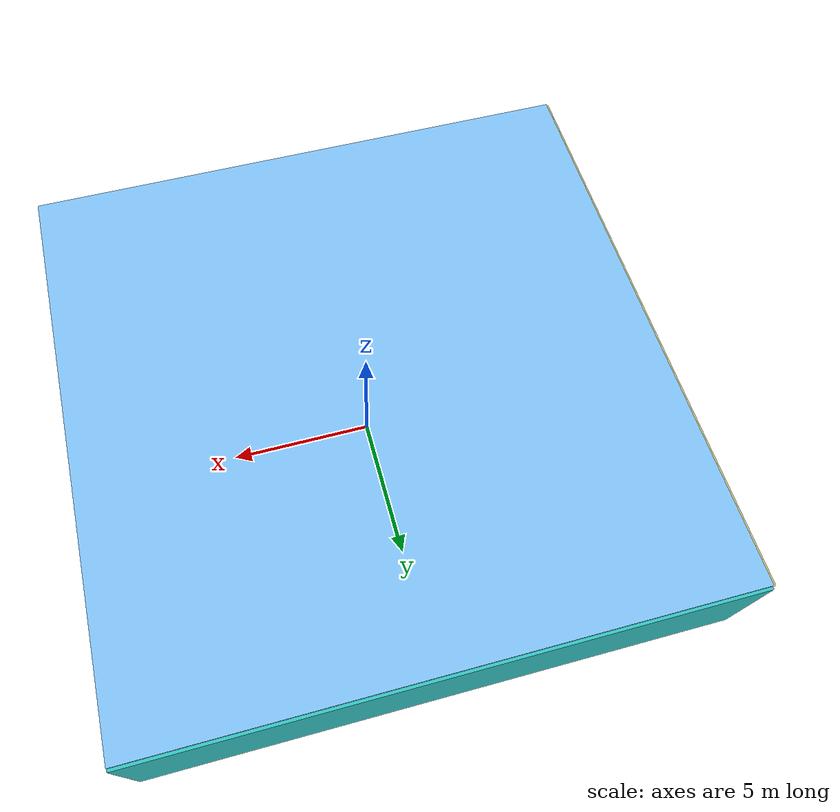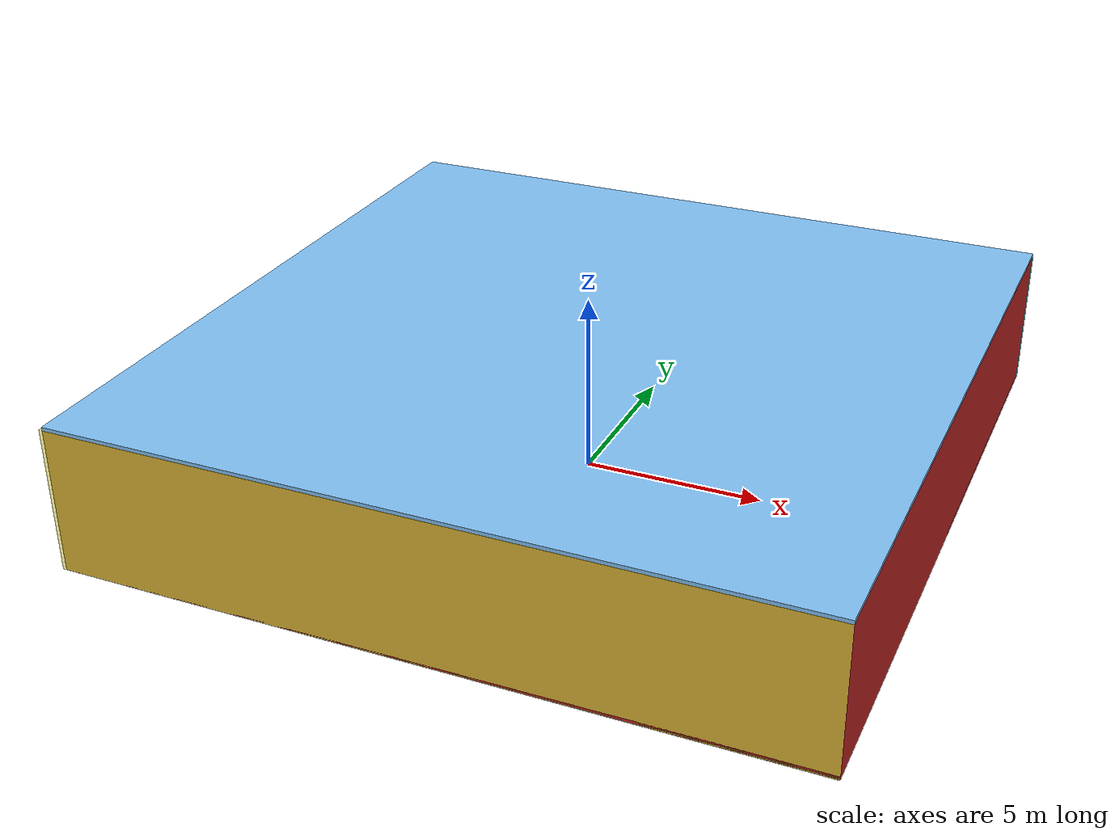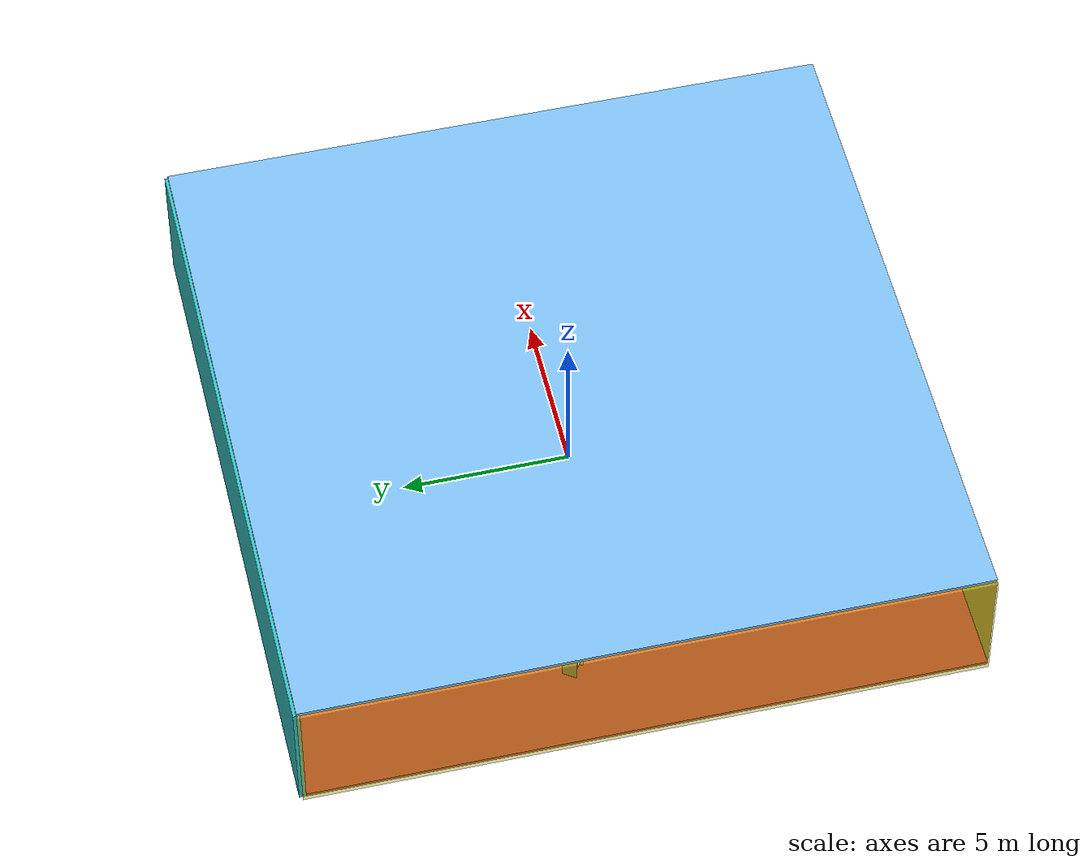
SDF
<sdf version="1.4">
 <world name="default">
  <physics type="ode">
   <max_step_size>0.001</max_step_size>
   <real_time_factor>1</real_time_factor>
   <real_time_update_rate>1000</real_time_update_rate>
   <gravity>0 0 -9.8</gravity>
  </physics>
  <scene><ambient>0.4 0.4 0.4 1</ambient><background>0.7 0.7 0.7 1</background><shadows>1</shadows></scene>
  <model name="Surrounding">
   <static>1</static>
   <link name="Ceiling">
    <collision name="Ceiling_Collision"><geometry><box><size>20 20 0.1</size></box></geometry></collision>
    <visual name="Ceiling_Visual">
     <geometry><box><size>20 20 0.1</size></box></geometry>
     <material>
      <script><uri>file://media/materials/scripts/gazebo.material</uri><name>Gazebo/SkyBlue</name></script>
     </material>
    </visual>
    <pose>0 0 4.05 0 0 0</pose>
   </link>
   <link name="Wall_South">
    <collision name="Wall_South_Collision">
     <geometry><box><size>20 0 4</size></box></geometry>
     <pose>0 0 2 0 -0 0</pose>
    </collision>
    <visual name="Wall_South_Visual">
     <pose>0 0 2 0 -0 0</pose>
     <geometry><box><size>20 0 4</size></box></geometry>
     <material>
      <script><uri>file://media/materials/scripts/gazebo.material</uri><name>Gazebo/Gold</name></script>
     </material>
    </visual>
    <velocity_decay><linear>0</linear><angular>0</angular></velocity_decay>
    <pose>0 -10 0 0 -0 0</pose>
   </link>
   <link name="Wall_East">
    <collision name="Wall_21_Collision">
     <geometry><box><size>20 0 4</size></box></geometry>
     <pose>0 0 2 0 -0 0</pose>
    </collision>
    <visual name="Wall_21_Visual">
     <pose>0 0 2 0 -0 0</pose>
     <geometry><box><size>20 0 4</size></box></geometry>
     <material>
      <script><uri>file://media/materials/scripts/gazebo.material</uri><name>Gazebo/Red</name></script>
     </material>
    </visual>
    <velocity_decay><linear>0</linear><angular>0</angular></velocity_decay>
    <pose>10 0 0 0 -0 1.5708</pose>
   </link>
   <link name="Wall_North">
    <collision name="Wall_22_Collision">
     <geometry><box><size>20 0.2 4</size></box></geometry>
     <pose>0 0 2 0 -0 0</pose>
    </collision>
    <visual name="Wall_22_Visual">
     <pose>0 0 2 0 -0 0</pose>
     <geometry><box><size>20 0.2 4</size></box></geometry>
     <material>
      <script>
       <uri>file://media/materials/scripts/gazebo.material</uri>
       <name>Gazebo/TurquoiseGlowOutline</name>
      </script>
     </material>
    </visual>
    <velocity_decay><linear>0</linear><angular>0</angular></velocity_decay>
    <pose>0 10 0 0 -0 0</pose>
   </link>
   <link name="Wall_West">
    <collision name="Wall_23_Collision">
     <geometry><box><size>20 0.2 4</size></box></geometry>
     <pose>0 0 2 0 -0 0</pose>
    </collision>
    <visual name="Wall_23_Visual">
     <pose>0 0 2 0 -0 0</pose>
     <geometry><box><size>20 0.2 4</size></box></geometry>
     <material>
      <script>
       <uri>file://media/materials/scripts/gazebo.material</uri>
       <name>Gazebo/YellowTransparent</name>
      </script>
     </material>
    </visual>
    <velocity_decay><linear>0</linear><angular>0</angular></velocity_decay>
    <pose>-10 0 0 0 0 -1.5708</pose>
   </link>
   <link name="Ground_link">
    <collision name="collision">
     <pose>0 0 .05 0 -0 0</pose>
     <geometry><box><size>20 20 0.1</size></box></geometry>
    </collision>
    <visual name="visual">
     <pose>0 0 .05 0 -0 0</pose>
     <geometry><box><size>20 20 0.1</size></box></geometry>
     <material>
      <script><uri>file://media/materials/scripts/gazebo.material</uri><name>Gazebo/RedBright</name></script>
     </material>
    </visual>
   </link>
   <static>1</static>
  </model>
  <spherical_coordinates>
   <surface_model>EARTH_WGS84</surface_model>
   <latitude_deg>0</latitude_deg>
   <longitude_deg>0</longitude_deg>
   <elevation>0</elevation>
   <heading_deg>0</heading_deg>
  </spherical_coordinates>
  <light name="lightball_0" type="diffuse">
   <diffuse>0.8 0.8 0.8 1</diffuse>
   <specular>0.2 0.2 0.2 1</specular>
   <attenuation>
    <range>100</range>
    <constant>0.7</constant>
    <linear>0.01</linear>
    <quadratic>0.001</quadratic>
   </attenuation>
   <direction>-0.5 0.1 -0.9</direction>
   <pose>-2.06853834176 0.705489030025 3.04242063383 0 0 0</pose>
  </light>
  <light name="lightball_1" type="diffuse">
   <diffuse>0.8 0.8 0.8 1</diffuse>
   <specular>0.2 0.2 0.2 1</specular>
   <attenuation>
    <range>100</range>
    <constant>0.7</constant>
    <linear>0.01</linear>
    <quadratic>0.001</quadratic>
   </attenuation>
   <direction>-0.5 0.1 -0.9</direction>
   <pose>-1.84519277173 -7.11197208527 0.708684905124 0 0 0</pose>
  </light>
  <light name="lightball_2" type="diffuse">
   <diffuse>0.8 0.8 0.8 1</diffuse>
   <specular>0.2 0.2 0.2 1</specular>
   <attenuation>
    <range>100</range>
    <constant>0.7</constant>
    <linear>0.01</linear>
    <quadratic>0.001</quadratic>
   </attenuation>
   <direction>-0.5 0.1 -0.9</direction>
   <pose>4.71438056988 1.63690492828 2.48035570357 0 0 0</pose>
  </light>
  <light name="lightball_3" type="diffuse">
   <diffuse>0.8 0.8 0.8 1</diffuse>
   <specular>0.2 0.2 0.2 1</specular>
   <attenuation>
    <range>100</range>
    <constant>0.7</constant>
    <linear>0.01</linear>
    <quadratic>0.001</quadratic>
   </attenuation>
   <direction>-0.5 0.1 -0.9</direction>
   <pose>-9.68955008987 4.67465502613 2.99925744426 0 0 0</pose>
  </light>
  <light name="lightball_4" type="diffuse">
   <diffuse>0.8 0.8 0.8 1</diffuse>
   <specular>0.2 0.2 0.2 1</specular>
   <attenuation>
    <range>100</range>
    <constant>0.7</constant>
    <linear>0.01</linear>
    <quadratic>0.001</quadratic>
   </attenuation>
   <direction>-0.5 0.1 -0.9</direction>
   <pose>8.2012303466 -3.10108381499 2.10514342667 0 0 0</pose>
  </light>
  <light name="lightball_5" type="diffuse">
   <diffuse>0.8 0.8 0.8 1</diffuse>
   <specular>0.2 0.2 0.2 1</specular>
   <attenuation>
    <range>100</range>
    <constant>0.7</constant>
    <linear>0.01</linear>
    <quadratic>0.001</quadratic>
   </attenuation>
   <direction>-0.5 0.1 -0.9</direction>
   <pose>5.50454687821 -2.51487145943 1.12920244907 0 0 0</pose>
  </light>
  <include><uri>model://cabinet</uri><pose>-7.54370165208 1.64162925576 0 0 0 0.967411410236</pose></include>
  <include><uri>model://table</uri><pose>-4.84253065992 6.39118629822 0 0 0 1.47424355507</pose></include>
  <include><uri>model://cabinet</uri><pose>3.60388895459 -5.42413126668 0 0 0 1.41245401995</pose></include>
  <include><uri>model://cabinet</uri><pose>5.47952512949 8.24711711724 0 0 0 2.06684241258</pose></include>
 </world>
</sdf>

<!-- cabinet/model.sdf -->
<sdf version="1.5">
  <model name="cabinet">
    <static>true</static>
    <link name="cabinet_bottom_plate">
      <inertial>
        <pose>0 0 -1 0 0 0</pose>
        <inertia>
          <ixx>2.050000</ixx>
          <ixy>0</ixy>
          <ixz>0</ixz>
          <iyy>2.050000</iyy>
          <iyz>0</iyz>
          <izz>2.050000</izz>
        </inertia>
        <mass>25.000000</mass>
      </inertial>
      <collision name="cabinet_bottom_plate_geom">
        <pose>0 0 0.010000 0 0 0</pose>
        <geometry>
          <box>
            <size>0.450000 0.450000 0.020000</size>
          </box>
        </geometry>
      </collision>
      <visual name="cabinet_bottom_plate_geom_visual">
        <pose>0 0 0.010000 0 0 0</pose>
        <geometry>
          <box>
            <size>0.450000 0.450000 0.020000</size>
          </box>
        </geometry>
        <material>
          <script>
            <uri>model://media/materials/scripts/gazebo.material</uri>
            <name>Gazebo/Wood</name>
          </script>
        </material>
      </visual>
      <collision name="cabinet_bottom_plate_geom_cabinet_back_plate">
        <pose>0.235000 0 0.510000 0 0 0</pose>
        <geometry>
          <box>
            <size>0.020000 0.450000 1.020000</size>
          </box>
        </geometry>
      </collision>
      <visual name="cabinet_bottom_plate_geom_cabinet_back_plate_visual">
        <pose>0.235000 0 0.510000 0 0 0</pose>
        <geometry>
          <box>
            <size>0.020000 0.450000 1.020000</size>
          </box>
        </geometry>
        <material>
          <script>
            <uri>model://media/materials/scripts/gazebo.material</uri>
            <name>Gazebo/Wood</name>
          </script>
        </material>
      </visual>
      <collision name="cabinet_bottom_plate_geom_cabinet_left_plate">
        <pose>0 0.235000 0.510000 0 0 0</pose>
        <geometry>
          <box>
            <size>0.450000 0.020000 1.020000</size>
          </box>
        </geometry>
      </collision>
      <visual name="cabinet_bottom_plate_geom_cabinet_left_plate_visual">
        <pose>0 0.235000 0.510000 0 0 0</pose>
        <geometry>
          <box>
            <size>0.450000 0.020000 1.020000</size>
          </box>
        </geometry>
        <material>
          <script>
            <uri>model://media/materials/scripts/gazebo.material</uri>
            <name>Gazebo/Wood</name>
          </script>
        </material>
      </visual>
      <collision name="cabinet_bottom_plate_geom_cabinet_middle_plate">
        <pose>0 0 0.510000 0 0 0</pose>
        <geometry>
          <box>
            <size>0.450000 0.450000 0.020000</size>
          </box>
        </geometry>
      </collision>
      <visual name="cabinet_bottom_plate_geom_cabinet_middle_plate_visual">
        <pose>0 0 0.510000 0 0 0</pose>
        <geometry>
          <box>
            <size>0.450000 0.450000 0.020000</size>
          </box>
        </geometry>
        <material>
          <script>
            <uri>model://media/materials/scripts/gazebo.material</uri>
            <name>Gazebo/Wood</name>
          </script>
        </material>
      </visual>
      <collision name="cabinet_bottom_plate_geom_cabinet_right_plate">
        <pose>0 -0.235000 0.510000 0 0 0</pose>
        <geometry>
          <box>
            <size>0.450000 0.020000 1.020000</size>
          </box>
        </geometry>
      </collision>
      <visual name="cabinet_bottom_plate_geom_cabinet_right_plate_visual">
        <pose>0 -0.235000 0.510000 0 0 0</pose>
        <geometry>
          <box>
            <size>0.450000 0.020000 1.020000</size>
          </box>
        </geometry>
        <material>
          <script>
            <uri>model://media/materials/scripts/gazebo.material</uri>
            <name>Gazebo/Wood</name>
          </script>
        </material>
      </visual>
      <collision name="cabinet_bottom_plate_geom_cabinet_top_plate">
        <pose>0 0 1.010000 0 0 0</pose>
        <geometry>
          <box>
            <size>0.450000 0.450000 0.020000</size>
          </box>
        </geometry>
      </collision>
      <visual name="cabinet_bottom_plate_geom_cabinet_top_plate_visual">
        <pose>0 0 1.010000 0 0 0</pose>
        <geometry>
          <box>
            <size>0.450000 0.450000 0.020000</size>
          </box>
        </geometry>
        <material>
          <script>
            <uri>model://media/materials/scripts/gazebo.material</uri>
            <name>Gazebo/Wood</name>
          </script>
        </material>
      </visual>
    </link>
  </model>
</sdf>

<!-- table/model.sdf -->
<sdf version="1.5">
  <model name="table">
    <static>true</static>
    <link name="link">
      <collision name="surface">
        <pose>0 0 1.0 0 0 0</pose>
        <geometry>
          <box>
            <size>1.5 0.8 0.03</size>
          </box>
        </geometry>
        <surface>
          <friction>
            <ode>
              <mu>0.6</mu>
              <mu2>0.6</mu2>
            </ode>
          </friction>
        </surface>
      </collision>
      <visual name="visual1">
        <pose>0 0 1.0 0 0 0</pose>
        <geometry>
          <box>
            <size>1.5 0.8 0.03</size>
          </box>
        </geometry>
        <material>
          <script>
            <uri>model://media/materials/scripts/gazebo.material</uri>
            <name>Gazebo/Wood</name>
          </script>
        </material>
      </visual>
      <collision name="front_left_leg">
        <pose>0.68 0.38 0.5 0 0 0</pose>
        <geometry>
          <cylinder>
            <radius>0.02</radius>
            <length>1.0</length>
          </cylinder>
        </geometry>
      </collision>
      <visual name="front_left_leg">
        <pose>0.68 0.38 0.5 0 0 0</pose>
        <geometry>
          <cylinder>
            <radius>0.02</radius>
            <length>1.0</length>
          </cylinder>
        </geometry>
        <material>
          <script>
            <uri>model://media/materials/scripts/gazebo.material</uri>
            <name>Gazebo/Grey</name>
          </script>
        </material>
      </visual>
      <collision name="front_right_leg">
        <pose>0.68 -0.38 0.5 0 0 0</pose>
        <geometry>
          <cylinder>
            <radius>0.02</radius>
            <length>1.0</length>
          </cylinder>
        </geometry>
      </collision>
      <visual name="front_right_leg">
        <pose>0.68 -0.38 0.5 0 0 0</pose>
        <geometry>
          <cylinder>
            <radius>0.02</radius>
            <length>1.0</length>
          </cylinder>
        </geometry>
        <material>
          <script>
            <uri>model://media/materials/scripts/gazebo.material</uri>
            <name>Gazebo/Grey</name>
          </script>
        </material>
      </visual>
      <collision name="back_right_leg">
        <pose>-0.68 -0.38 0.5 0 0 0</pose>
        <geometry>
          <cylinder>
            <radius>0.02</radius>
            <length>1.0</length>
          </cylinder>
        </geometry>
      </collision>
      <visual name="back_right_leg">
        <pose>-0.68 -0.38 0.5 0 0 0</pose>
        <geometry>
          <cylinder>
            <radius>0.02</radius>
            <length>1.0</length>
          </cylinder>
        </geometry>
        <material>
          <script>
            <uri>model://media/materials/scripts/gazebo.material</uri>
            <name>Gazebo/Grey</name>
          </script>
        </material>
      </visual>
      <collision name="back_left_leg">
        <pose>-0.68 0.38 0.5 0 0 0</pose>
        <geometry>
          <cylinder>
            <radius>0.02</radius>
            <length>1.0</length>
          </cylinder>
        </geometry>
      </collision>
      <visual name="back_left_leg">
        <pose>-0.68 0.38 0.5 0 0 0</pose>
        <geometry>
          <cylinder>
            <radius>0.02</radius>
            <length>1.0</length>
          </cylinder>
        </geometry>
        <material>
          <script>
            <uri>model://media/materials/scripts/gazebo.material</uri>
            <name>Gazebo/Grey</name>
          </script>
        </material>
      </visual>
    </link>
  </model>
</sdf>
